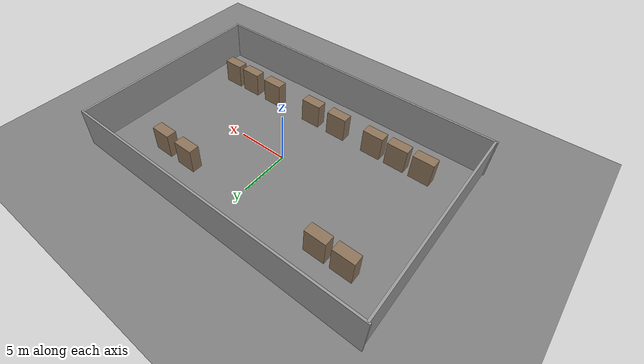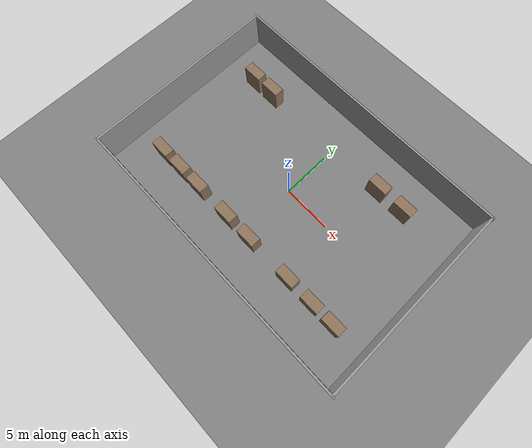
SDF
<?xml version="1.0"?>
<sdf version="1.8">
  <world name="warehouse">

    <physics name="1ms" type="dart">
      <max_step_size>0.001</max_step_size>
      <real_time_factor>1.0</real_time_factor>
    </physics>

    <!-- ── World system plugins (Fortress: ignition:: namespace) ── -->
    <plugin
      filename="ignition-gazebo-physics-system"
      name="ignition::gazebo::systems::Physics">
    </plugin>

    <plugin
      filename="ignition-gazebo-sensors-system"
      name="ignition::gazebo::systems::Sensors">
      <render_engine>ogre2</render_engine>
    </plugin>

    <plugin
      filename="ignition-gazebo-imu-system"
      name="ignition::gazebo::systems::Imu">
    </plugin>

    <plugin
      filename="ignition-gazebo-contact-system"
      name="ignition::gazebo::systems::Contact">
    </plugin>

    <plugin
      filename="ignition-gazebo-user-commands-system"
      name="ignition::gazebo::systems::UserCommands">
    </plugin>

    <plugin
      filename="ignition-gazebo-scene-broadcaster-system"
      name="ignition::gazebo::systems::SceneBroadcaster">
    </plugin>

    <!-- Directional warehouse lighting -->
    <light name="light_main" type="directional">
      <cast_shadows>true</cast_shadows>
      <pose>0 0 15 0 0.3 0</pose>
      <diffuse>0.9 0.9 0.9 1</diffuse>
      <specular>0.1 0.1 0.1 1</specular>
      <attenuation><range>100</range><constant>0.9</constant><linear>0.01</linear><quadratic>0.001</quadratic></attenuation>
      <direction>-0.5 0.1 -0.9</direction>
    </light>
    <light name="light_fill" type="directional">
      <cast_shadows>false</cast_shadows>
      <pose>0 0 15 0 -0.3 3.14</pose>
      <diffuse>0.4 0.4 0.5 1</diffuse>
      <specular>0.0 0.0 0.0 1</specular>
      <direction>0.5 -0.1 -0.9</direction>
    </light>

    <!-- ── Ground plane (100×100 m, inline — no Fuel download required) ── -->
    <model name="ground_plane">
      <static>true</static>
      <link name="link">
        <collision name="collision">
          <geometry>
            <plane>
              <normal>0 0 1</normal>
              <size>100 100</size>
            </plane>
          </geometry>
        </collision>
        <visual name="visual">
          <geometry>
            <plane>
              <normal>0 0 1</normal>
              <size>100 100</size>
            </plane>
          </geometry>
          <material>
            <ambient>0.5 0.5 0.5 1</ambient>
            <diffuse>0.5 0.5 0.5 1</diffuse>
            <specular>0.5 0.5 0.5 1</specular>
          </material>
        </visual>
      </link>
    </model>

    <!-- ── Perimeter walls (30 m × 20 m, thickness 0.2 m, height 4 m) ── -->
    <model name="wall_south">
      <static>true</static><pose>0 -10 2.0 0 0 0</pose>
      <link name="link">
        <collision name="col"><geometry><box><size>30.4 0.2 4.0</size></box></geometry></collision>
        <visual name="vis">
          <geometry><box><size>30.4 0.2 4.0</size></box></geometry>
          <material><ambient>0.6 0.6 0.6 1</ambient><diffuse>0.6 0.6 0.6 1</diffuse></material>
        </visual>
      </link>
    </model>
    <model name="wall_north">
      <static>true</static><pose>0 10 2.0 0 0 0</pose>
      <link name="link">
        <collision name="col"><geometry><box><size>30.4 0.2 4.0</size></box></geometry></collision>
        <visual name="vis">
          <geometry><box><size>30.4 0.2 4.0</size></box></geometry>
          <material><ambient>0.6 0.6 0.6 1</ambient><diffuse>0.6 0.6 0.6 1</diffuse></material>
        </visual>
      </link>
    </model>
    <model name="wall_west">
      <static>true</static><pose>-15 0 2.0 0 0 0</pose>
      <link name="link">
        <collision name="col"><geometry><box><size>0.2 20.0 4.0</size></box></geometry></collision>
        <visual name="vis">
          <geometry><box><size>0.2 20.0 4.0</size></box></geometry>
          <material><ambient>0.6 0.6 0.6 1</ambient><diffuse>0.6 0.6 0.6 1</diffuse></material>
        </visual>
      </link>
    </model>
    <model name="wall_east">
      <static>true</static><pose>15 0 2.0 0 0 0</pose>
      <link name="link">
        <collision name="col"><geometry><box><size>0.2 20.0 4.0</size></box></geometry></collision>
        <visual name="vis">
          <geometry><box><size>0.2 20.0 4.0</size></box></geometry>
          <material><ambient>0.6 0.6 0.6 1</ambient><diffuse>0.6 0.6 0.6 1</diffuse></material>
        </visual>
      </link>
    </model>

    <!-- Row A — South tier (y=-6) -->
    <model name="shelf_A_S1"><static>true</static><pose>-11 -6 1.25 0 0 0</pose>
      <link name="link">
        <collision name="col"><geometry><box><size>2.0 1.0 2.5</size></box></geometry></collision>
        <visual name="vis"><geometry><box><size>2.0 1.0 2.5</size></box></geometry>
          <material><ambient>0.55 0.45 0.35 1</ambient><diffuse>0.55 0.45 0.35 1</diffuse></material></visual>
      </link></model>
    <model name="shelf_A_S2"><static>true</static><pose>-8.5 -6 1.25 0 0 0</pose>
      <link name="link">
        <collision name="col"><geometry><box><size>2.0 1.0 2.5</size></box></geometry></collision>
        <visual name="vis"><geometry><box><size>2.0 1.0 2.5</size></box></geometry>
          <material><ambient>0.55 0.45 0.35 1</ambient><diffuse>0.55 0.45 0.35 1</diffuse></material></visual>
      </link></model>
    <model name="shelf_A_S3"><static>true</static><pose>-6 -6 1.25 0 0 0</pose>
      <link name="link">
        <collision name="col"><geometry><box><size>2.0 1.0 2.5</size></box></geometry></collision>
        <visual name="vis"><geometry><box><size>2.0 1.0 2.5</size></box></geometry>
          <material><ambient>0.55 0.45 0.35 1</ambient><diffuse>0.55 0.45 0.35 1</diffuse></material></visual>
      </link></model>

    <!-- Row A — North tier (y=+6) -->
    <model name="shelf_A_N1"><static>true</static><pose>-11 6 1.25 0 0 0</pose>
      <link name="link">
        <collision name="col"><geometry><box><size>2.0 1.0 2.5</size></box></geometry></collision>
        <visual name="vis"><geometry><box><size>2.0 1.0 2.5</size></box></geometry>
          <material><ambient>0.55 0.45 0.35 1</ambient><diffuse>0.55 0.45 0.35 1</diffuse></material></visual>
      </link></model>
    <model name="shelf_A_N2"><static>true</static><pose>-8.5 6 1.25 0 0 0</pose>
      <link name="link">
        <collision name="col"><geometry><box><size>2.0 1.0 2.5</size></box></geometry></collision>
        <visual name="vis"><geometry><box><size>2.0 1.0 2.5</size></box></geometry>
          <material><ambient>0.55 0.45 0.35 1</ambient><diffuse>0.55 0.45 0.35 1</diffuse></material></visual>
      </link></model>

    <!-- Row B — South tier (y=-6, central area) -->
    <model name="shelf_B_S1"><static>true</static><pose>-2 -6 1.25 0 0 0</pose>
      <link name="link">
        <collision name="col"><geometry><box><size>2.0 1.0 2.5</size></box></geometry></collision>
        <visual name="vis"><geometry><box><size>2.0 1.0 2.5</size></box></geometry>
          <material><ambient>0.55 0.45 0.35 1</ambient><diffuse>0.55 0.45 0.35 1</diffuse></material></visual>
      </link></model>
    <model name="shelf_B_S2"><static>true</static><pose>1 -6 1.25 0 0 0</pose>
      <link name="link">
        <collision name="col"><geometry><box><size>2.0 1.0 2.5</size></box></geometry></collision>
        <visual name="vis"><geometry><box><size>2.0 1.0 2.5</size></box></geometry>
          <material><ambient>0.55 0.45 0.35 1</ambient><diffuse>0.55 0.45 0.35 1</diffuse></material></visual>
      </link></model>

    <!-- Row C — South tier (y=-6, east side) -->
    <model name="shelf_C_S1"><static>true</static><pose>6 -6 1.25 0 0 0</pose>
      <link name="link">
        <collision name="col"><geometry><box><size>2.0 1.0 2.5</size></box></geometry></collision>
        <visual name="vis"><geometry><box><size>2.0 1.0 2.5</size></box></geometry>
          <material><ambient>0.55 0.45 0.35 1</ambient><diffuse>0.55 0.45 0.35 1</diffuse></material></visual>
      </link></model>
    <model name="shelf_C_S2"><static>true</static><pose>9 -6 1.25 0 0 0</pose>
      <link name="link">
        <collision name="col"><geometry><box><size>2.0 1.0 2.5</size></box></geometry></collision>
        <visual name="vis"><geometry><box><size>2.0 1.0 2.5</size></box></geometry>
          <material><ambient>0.55 0.45 0.35 1</ambient><diffuse>0.55 0.45 0.35 1</diffuse></material></visual>
      </link></model>
    <model name="shelf_C_S3"><static>true</static><pose>11.5 -6 1.25 0 0 0</pose>
      <link name="link">
        <collision name="col"><geometry><box><size>2.0 1.0 2.5</size></box></geometry></collision>
        <visual name="vis"><geometry><box><size>2.0 1.0 2.5</size></box></geometry>
          <material><ambient>0.55 0.45 0.35 1</ambient><diffuse>0.55 0.45 0.35 1</diffuse></material></visual>
      </link></model>

    <!-- Row C — North tier (y=+6) -->
    <model name="shelf_C_N1"><static>true</static><pose>6 6 1.25 0 0 0</pose>
      <link name="link">
        <collision name="col"><geometry><box><size>2.0 1.0 2.5</size></box></geometry></collision>
        <visual name="vis"><geometry><box><size>2.0 1.0 2.5</size></box></geometry>
          <material><ambient>0.55 0.45 0.35 1</ambient><diffuse>0.55 0.45 0.35 1</diffuse></material></visual>
      </link></model>
    <model name="shelf_C_N2"><static>true</static><pose>9 6 1.25 0 0 0</pose>
      <link name="link">
        <collision name="col"><geometry><box><size>2.0 1.0 2.5</size></box></geometry></collision>
        <visual name="vis"><geometry><box><size>2.0 1.0 2.5</size></box></geometry>
          <material><ambient>0.55 0.45 0.35 1</ambient><diffuse>0.55 0.45 0.35 1</diffuse></material></visual>
      </link></model>

  </world>
</sdf>
